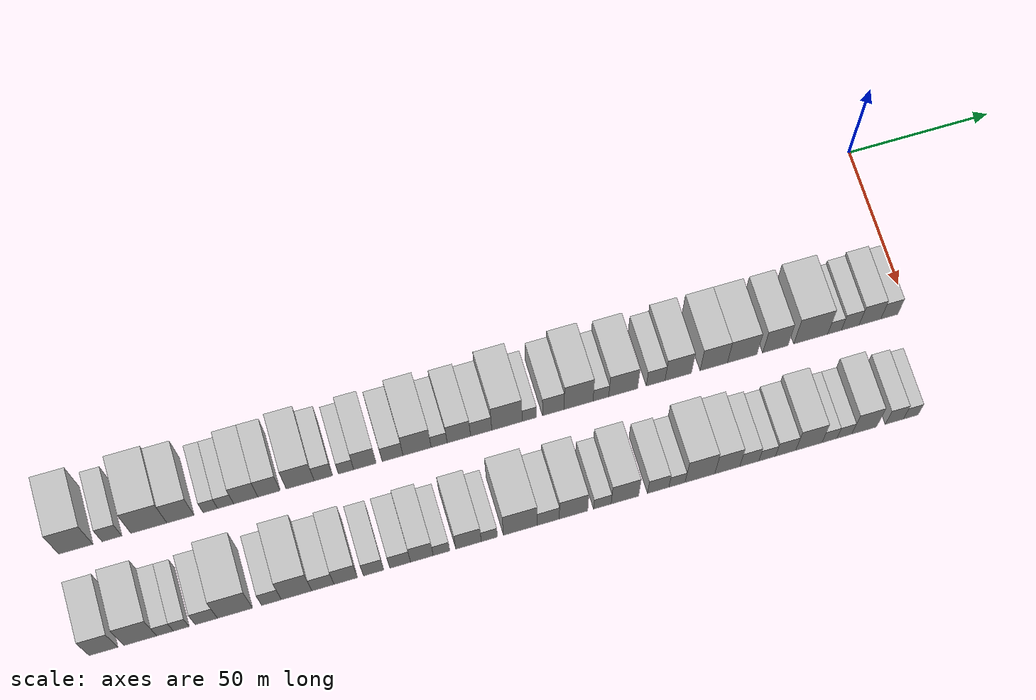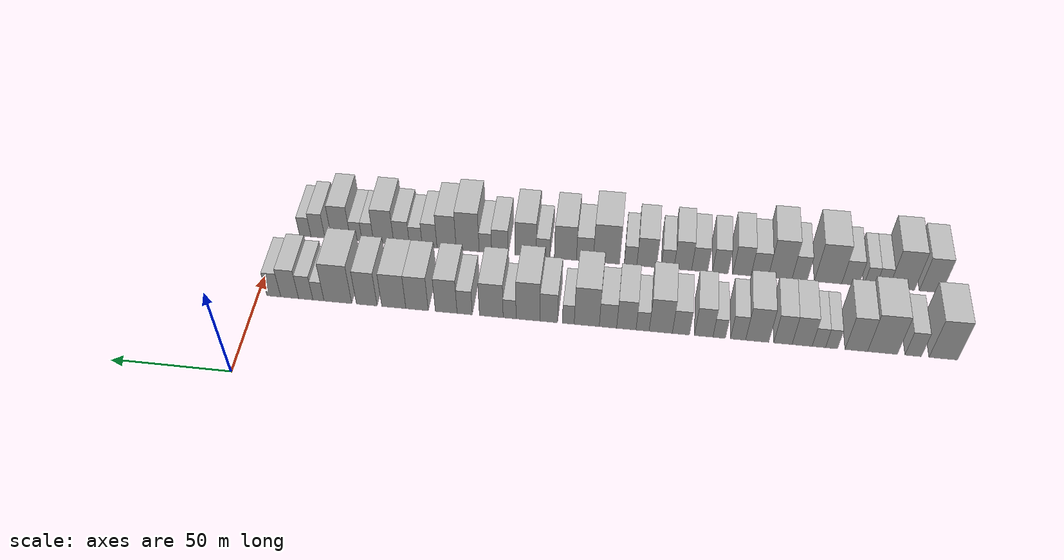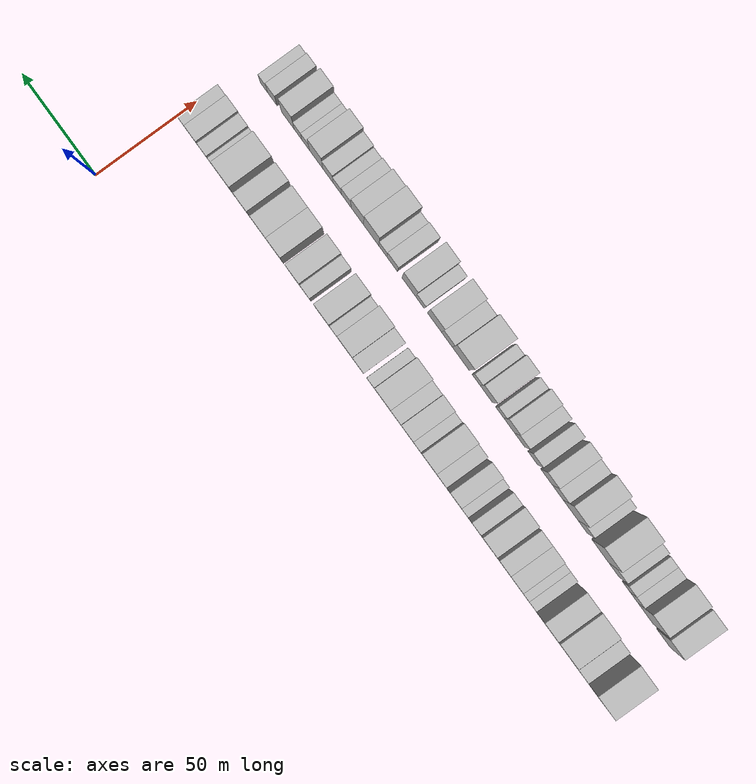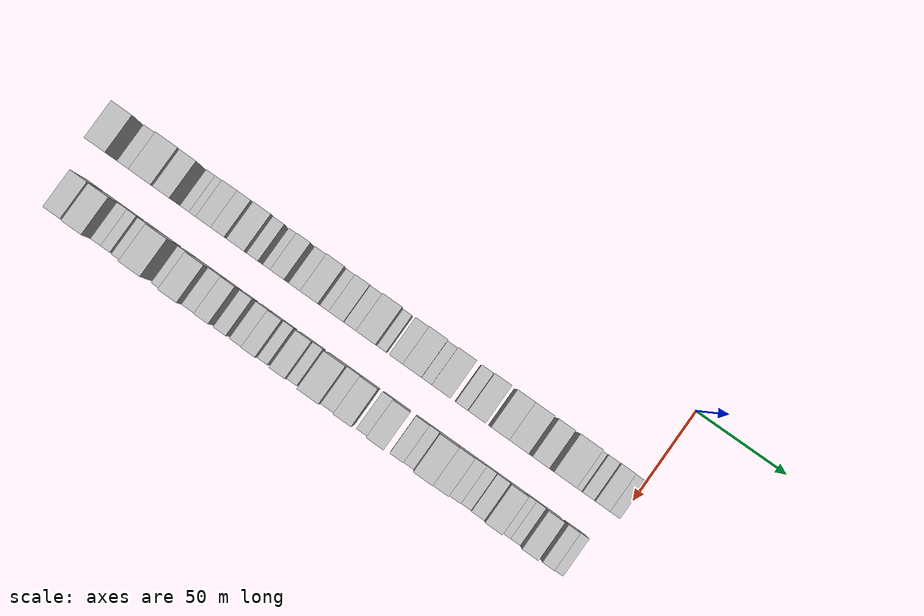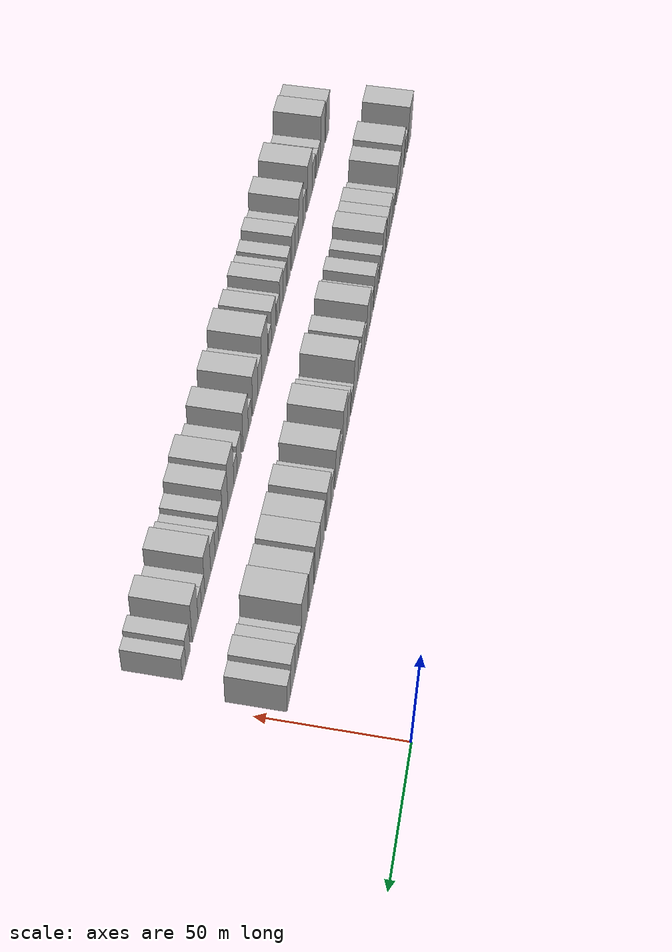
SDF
<sdf version="1.6">
 <world name="default">
  <model name="building_1">
   <static>1</static>
   <pose>50.0000 -284.3592 0 0.000000 0.000000 0.000000</pose>
   <link name="link">
    <pose>0 0 12.00 0 0 0</pose>
    <collision name="collision"><geometry><box><size>20.0000 11.2816 24.0000</size></box></geometry></collision>
    <visual name="visual">
     <cast_shadows>0</cast_shadows>
     <geometry><box><size>20.0000 11.2816 24.0000</size></box></geometry>
     <material>
      <script>
       <uri>model://HANNAS_wall/materials/scripts</uri>
       <uri>model://HANNAS_wall/materials/textures</uri>
       <name>vrc/HANNAS_wall</name>
      </script>
     </material>
    </visual>
   </link>
  </model>
  <model name="building_2">
   <static>1</static>
   <pose>50.0000 -272.4377 0 0.000000 0.000000 0.000000</pose>
   <link name="link">
    <pose>0 0 7.50 0 0 0</pose>
    <collision name="collision"><geometry><box><size>20.0000 6.5613 15.0000</size></box></geometry></collision>
    <visual name="visual">
     <cast_shadows>0</cast_shadows>
     <geometry><box><size>20.0000 6.5613 15.0000</size></box></geometry>
     <material>
      <script>
       <uri>model://HANNAS_wall/materials/scripts</uri>
       <uri>model://HANNAS_wall/materials/textures</uri>
       <name>vrc/HANNAS_wall</name>
      </script>
     </material>
    </visual>
   </link>
  </model>
  <model name="building_3">
   <static>1</static>
   <pose>50.0000 -260.1841 0 0.000000 0.000000 0.000000</pose>
   <link name="link">
    <pose>0 0 12.00 0 0 0</pose>
    <collision name="collision"><geometry><box><size>20.0000 11.9459 24.0000</size></box></geometry></collision>
    <visual name="visual">
     <cast_shadows>0</cast_shadows>
     <geometry><box><size>20.0000 11.9459 24.0000</size></box></geometry>
     <material>
      <script>
       <uri>model://HANNAS_wall/materials/scripts</uri>
       <uri>model://HANNAS_wall/materials/textures</uri>
       <name>vrc/HANNAS_wall</name>
      </script>
     </material>
    </visual>
   </link>
  </model>
  <model name="building_4">
   <static>1</static>
   <pose>50.0000 -249.6946 0 0.000000 0.000000 0.000000</pose>
   <link name="link">
    <pose>0 0 10.50 0 0 0</pose>
    <collision name="collision"><geometry><box><size>20.0000 9.0331 21.0000</size></box></geometry></collision>
    <visual name="visual">
     <cast_shadows>0</cast_shadows>
     <geometry><box><size>20.0000 9.0331 21.0000</size></box></geometry>
     <material>
      <script>
       <uri>model://HANNAS_wall/materials/scripts</uri>
       <uri>model://HANNAS_wall/materials/textures</uri>
       <name>vrc/HANNAS_wall</name>
      </script>
     </material>
    </visual>
   </link>
  </model>
  <model name="building_5">
   <static>1</static>
   <pose>50.0000 -239.7531 0 0.000000 0.000000 0.000000</pose>
   <link name="link">
    <pose>0 0 6.00 0 0 0</pose>
    <collision name="collision"><geometry><box><size>20.0000 4.8501 12.0000</size></box></geometry></collision>
    <visual name="visual">
     <cast_shadows>0</cast_shadows>
     <geometry><box><size>20.0000 4.8501 12.0000</size></box></geometry>
     <material>
      <script>
       <uri>model://HANNAS_wall/materials/scripts</uri>
       <uri>model://HANNAS_wall/materials/textures</uri>
       <name>vrc/HANNAS_wall</name>
      </script>
     </material>
    </visual>
   </link>
  </model>
  <model name="building_6">
   <static>1</static>
   <pose>50.0000 -234.6435 0 0.000000 0.000000 0.000000</pose>
   <link name="link">
    <pose>0 0 6.00 0 0 0</pose>
    <collision name="collision"><geometry><box><size>20.0000 5.3691 12.0000</size></box></geometry></collision>
    <visual name="visual">
     <cast_shadows>0</cast_shadows>
     <geometry><box><size>20.0000 5.3691 12.0000</size></box></geometry>
     <material>
      <script>
       <uri>model://HANNAS_wall/materials/scripts</uri>
       <uri>model://HANNAS_wall/materials/textures</uri>
       <name>vrc/HANNAS_wall</name>
      </script>
     </material>
    </visual>
   </link>
  </model>
  <model name="building_7">
   <static>1</static>
   <pose>50.0000 -227.8935 0 0.000000 0.000000 0.000000</pose>
   <link name="link">
    <pose>0 0 9.00 0 0 0</pose>
    <collision name="collision"><geometry><box><size>20.0000 8.1309 18.0000</size></box></geometry></collision>
    <visual name="visual">
     <cast_shadows>0</cast_shadows>
     <geometry><box><size>20.0000 8.1309 18.0000</size></box></geometry>
     <material>
      <script>
       <uri>model://HANNAS_wall/materials/scripts</uri>
       <uri>model://HANNAS_wall/materials/textures</uri>
       <name>vrc/HANNAS_wall</name>
      </script>
     </material>
    </visual>
   </link>
  </model>
  <model name="building_8">
   <static>1</static>
   <pose>50.0000 -220.1073 0 0.000000 0.000000 0.000000</pose>
   <link name="link">
    <pose>0 0 9.00 0 0 0</pose>
    <collision name="collision"><geometry><box><size>20.0000 7.4415 18.0000</size></box></geometry></collision>
    <visual name="visual">
     <cast_shadows>0</cast_shadows>
     <geometry><box><size>20.0000 7.4415 18.0000</size></box></geometry>
     <material>
      <script>
       <uri>model://HANNAS_wall/materials/scripts</uri>
       <uri>model://HANNAS_wall/materials/textures</uri>
       <name>vrc/HANNAS_wall</name>
      </script>
     </material>
    </visual>
   </link>
  </model>
  <model name="building_9">
   <static>1</static>
   <pose>50.0000 -209.6560 0 0.000000 0.000000 0.000000</pose>
   <link name="link">
    <pose>0 0 10.50 0 0 0</pose>
    <collision name="collision"><geometry><box><size>20.0000 9.4611 21.0000</size></box></geometry></collision>
    <visual name="visual">
     <cast_shadows>0</cast_shadows>
     <geometry><box><size>20.0000 9.4611 21.0000</size></box></geometry>
     <material>
      <script>
       <uri>model://HANNAS_wall/materials/scripts</uri>
       <uri>model://HANNAS_wall/materials/textures</uri>
       <name>vrc/HANNAS_wall</name>
      </script>
     </material>
    </visual>
   </link>
  </model>
  <model name="building_10">
   <static>1</static>
   <pose>50.0000 -201.8469 0 0.000000 0.000000 0.000000</pose>
   <link name="link">
    <pose>0 0 7.50 0 0 0</pose>
    <collision name="collision"><geometry><box><size>20.0000 6.1570 15.0000</size></box></geometry></collision>
    <visual name="visual">
     <cast_shadows>0</cast_shadows>
     <geometry><box><size>20.0000 6.1570 15.0000</size></box></geometry>
     <material>
      <script>
       <uri>model://HANNAS_wall/materials/scripts</uri>
       <uri>model://HANNAS_wall/materials/textures</uri>
       <name>vrc/HANNAS_wall</name>
      </script>
     </material>
    </visual>
   </link>
  </model>
  <model name="building_11">
   <static>1</static>
   <pose>50.0000 -194.1964 0 0.000000 0.000000 0.000000</pose>
   <link name="link">
    <pose>0 0 6.00 0 0 0</pose>
    <collision name="collision"><geometry><box><size>20.0000 5.1440 12.0000</size></box></geometry></collision>
    <visual name="visual">
     <cast_shadows>0</cast_shadows>
     <geometry><box><size>20.0000 5.1440 12.0000</size></box></geometry>
     <material>
      <script>
       <uri>model://HANNAS_wall/materials/scripts</uri>
       <uri>model://HANNAS_wall/materials/textures</uri>
       <name>vrc/HANNAS_wall</name>
      </script>
     </material>
    </visual>
   </link>
  </model>
  <model name="building_12">
   <static>1</static>
   <pose>50.0000 -187.8328 0 0.000000 0.000000 0.000000</pose>
   <link name="link">
    <pose>0 0 9.00 0 0 0</pose>
    <collision name="collision"><geometry><box><size>20.0000 7.5832 18.0000</size></box></geometry></collision>
    <visual name="visual">
     <cast_shadows>0</cast_shadows>
     <geometry><box><size>20.0000 7.5832 18.0000</size></box></geometry>
     <material>
      <script>
       <uri>model://HANNAS_wall/materials/scripts</uri>
       <uri>model://HANNAS_wall/materials/textures</uri>
       <name>vrc/HANNAS_wall</name>
      </script>
     </material>
    </visual>
   </link>
  </model>
  <model name="building_13">
   <static>1</static>
   <pose>50.0000 -178.5126 0 0.000000 0.000000 0.000000</pose>
   <link name="link">
    <pose>0 0 7.50 0 0 0</pose>
    <collision name="collision"><geometry><box><size>20.0000 7.0572 15.0000</size></box></geometry></collision>
    <visual name="visual">
     <cast_shadows>0</cast_shadows>
     <geometry><box><size>20.0000 7.0572 15.0000</size></box></geometry>
     <material>
      <script>
       <uri>model://HANNAS_wall/materials/scripts</uri>
       <uri>model://HANNAS_wall/materials/textures</uri>
       <name>vrc/HANNAS_wall</name>
      </script>
     </material>
    </visual>
   </link>
  </model>
  <model name="building_14">
   <static>1</static>
   <pose>50.0000 -170.2077 0 0.000000 0.000000 0.000000</pose>
   <link name="link">
    <pose>0 0 10.50 0 0 0</pose>
    <collision name="collision"><geometry><box><size>20.0000 9.5524 21.0000</size></box></geometry></collision>
    <visual name="visual">
     <cast_shadows>0</cast_shadows>
     <geometry><box><size>20.0000 9.5524 21.0000</size></box></geometry>
     <material>
      <script>
       <uri>model://HANNAS_wall/materials/scripts</uri>
       <uri>model://HANNAS_wall/materials/textures</uri>
       <name>vrc/HANNAS_wall</name>
      </script>
     </material>
    </visual>
   </link>
  </model>
  <model name="building_15">
   <static>1</static>
   <pose>50.0000 -162.7156 0 0.000000 0.000000 0.000000</pose>
   <link name="link">
    <pose>0 0 6.00 0 0 0</pose>
    <collision name="collision"><geometry><box><size>20.0000 5.4319 12.0000</size></box></geometry></collision>
    <visual name="visual">
     <cast_shadows>0</cast_shadows>
     <geometry><box><size>20.0000 5.4319 12.0000</size></box></geometry>
     <material>
      <script>
       <uri>model://HANNAS_wall/materials/scripts</uri>
       <uri>model://HANNAS_wall/materials/textures</uri>
       <name>vrc/HANNAS_wall</name>
      </script>
     </material>
    </visual>
   </link>
  </model>
  <model name="building_16">
   <static>1</static>
   <pose>50.0000 -156.0095 0 0.000000 0.000000 0.000000</pose>
   <link name="link">
    <pose>0 0 9.00 0 0 0</pose>
    <collision name="collision"><geometry><box><size>20.0000 7.9802 18.0000</size></box></geometry></collision>
    <visual name="visual">
     <cast_shadows>0</cast_shadows>
     <geometry><box><size>20.0000 7.9802 18.0000</size></box></geometry>
     <material>
      <script>
       <uri>model://HANNAS_wall/materials/scripts</uri>
       <uri>model://HANNAS_wall/materials/textures</uri>
       <name>vrc/HANNAS_wall</name>
      </script>
     </material>
    </visual>
   </link>
  </model>
  <model name="building_17">
   <static>1</static>
   <pose>50.0000 -148.4073 0 0.000000 0.000000 0.000000</pose>
   <link name="link">
    <pose>0 0 7.50 0 0 0</pose>
    <collision name="collision"><geometry><box><size>20.0000 7.2241 15.0000</size></box></geometry></collision>
    <visual name="visual">
     <cast_shadows>0</cast_shadows>
     <geometry><box><size>20.0000 7.2241 15.0000</size></box></geometry>
     <material>
      <script>
       <uri>model://HANNAS_wall/materials/scripts</uri>
       <uri>model://HANNAS_wall/materials/textures</uri>
       <name>vrc/HANNAS_wall</name>
      </script>
     </material>
    </visual>
   </link>
  </model>
  <model name="building_18">
   <static>1</static>
   <pose>50.0000 -139.5887 0 0.000000 0.000000 0.000000</pose>
   <link name="link">
    <pose>0 0 12.00 0 0 0</pose>
    <collision name="collision"><geometry><box><size>20.0000 10.4132 24.0000</size></box></geometry></collision>
    <visual name="visual">
     <cast_shadows>0</cast_shadows>
     <geometry><box><size>20.0000 10.4132 24.0000</size></box></geometry>
     <material>
      <script>
       <uri>model://HANNAS_wall/materials/scripts</uri>
       <uri>model://HANNAS_wall/materials/textures</uri>
       <name>vrc/HANNAS_wall</name>
      </script>
     </material>
    </visual>
   </link>
  </model>
  <model name="building_19">
   <static>1</static>
   <pose>50.0000 -131.9105 0 0.000000 0.000000 0.000000</pose>
   <link name="link">
    <pose>0 0 6.00 0 0 0</pose>
    <collision name="collision"><geometry><box><size>20.0000 4.9431 12.0000</size></box></geometry></collision>
    <visual name="visual">
     <cast_shadows>0</cast_shadows>
     <geometry><box><size>20.0000 4.9431 12.0000</size></box></geometry>
     <material>
      <script>
       <uri>model://HANNAS_wall/materials/scripts</uri>
       <uri>model://HANNAS_wall/materials/textures</uri>
       <name>vrc/HANNAS_wall</name>
      </script>
     </material>
    </visual>
   </link>
  </model>
  <model name="building_20">
   <static>1</static>
   <pose>50.0000 -123.7451 0 0.000000 0.000000 0.000000</pose>
   <link name="link">
    <pose>0 0 9.00 0 0 0</pose>
    <collision name="collision"><geometry><box><size>20.0000 7.3878 18.0000</size></box></geometry></collision>
    <visual name="visual">
     <cast_shadows>0</cast_shadows>
     <geometry><box><size>20.0000 7.3878 18.0000</size></box></geometry>
     <material>
      <script>
       <uri>model://HANNAS_wall/materials/scripts</uri>
       <uri>model://HANNAS_wall/materials/textures</uri>
       <name>vrc/HANNAS_wall</name>
      </script>
     </material>
    </visual>
   </link>
  </model>
  <model name="building_21">
   <static>1</static>
   <pose>50.0000 -115.0648 0 0.000000 0.000000 0.000000</pose>
   <link name="link">
    <pose>0 0 12.00 0 0 0</pose>
    <collision name="collision"><geometry><box><size>20.0000 9.9729 24.0000</size></box></geometry></collision>
    <visual name="visual">
     <cast_shadows>0</cast_shadows>
     <geometry><box><size>20.0000 9.9729 24.0000</size></box></geometry>
     <material>
      <script>
       <uri>model://HANNAS_wall/materials/scripts</uri>
       <uri>model://HANNAS_wall/materials/textures</uri>
       <name>vrc/HANNAS_wall</name>
      </script>
     </material>
    </visual>
   </link>
  </model>
  <model name="building_22">
   <static>1</static>
   <pose>50.0000 -107.3679 0 0.000000 0.000000 0.000000</pose>
   <link name="link">
    <pose>0 0 6.00 0 0 0</pose>
    <collision name="collision"><geometry><box><size>20.0000 5.4209 12.0000</size></box></geometry></collision>
    <visual name="visual">
     <cast_shadows>0</cast_shadows>
     <geometry><box><size>20.0000 5.4209 12.0000</size></box></geometry>
     <material>
      <script>
       <uri>model://HANNAS_wall/materials/scripts</uri>
       <uri>model://HANNAS_wall/materials/textures</uri>
       <name>vrc/HANNAS_wall</name>
      </script>
     </material>
    </visual>
   </link>
  </model>
  <model name="building_23">
   <static>1</static>
   <pose>50.0000 -99.6649 0 0.000000 0.000000 0.000000</pose>
   <link name="link">
    <pose>0 0 10.50 0 0 0</pose>
    <collision name="collision"><geometry><box><size>20.0000 9.9850 21.0000</size></box></geometry></collision>
    <visual name="visual">
     <cast_shadows>0</cast_shadows>
     <geometry><box><size>20.0000 9.9850 21.0000</size></box></geometry>
     <material>
      <script>
       <uri>model://HANNAS_wall/materials/scripts</uri>
       <uri>model://HANNAS_wall/materials/textures</uri>
       <name>vrc/HANNAS_wall</name>
      </script>
     </material>
    </visual>
   </link>
  </model>
  <model name="building_24">
   <static>1</static>
   <pose>50.0000 -88.4463 0 0.000000 0.000000 0.000000</pose>
   <link name="link">
    <pose>0 0 7.50 0 0 0</pose>
    <collision name="collision"><geometry><box><size>20.0000 6.4522 15.0000</size></box></geometry></collision>
    <visual name="visual">
     <cast_shadows>0</cast_shadows>
     <geometry><box><size>20.0000 6.4522 15.0000</size></box></geometry>
     <material>
      <script>
       <uri>model://HANNAS_wall/materials/scripts</uri>
       <uri>model://HANNAS_wall/materials/textures</uri>
       <name>vrc/HANNAS_wall</name>
      </script>
     </material>
    </visual>
   </link>
  </model>
  <model name="building_25">
   <static>1</static>
   <pose>50.0000 -80.6226 0 0.000000 0.000000 0.000000</pose>
   <link name="link">
    <pose>0 0 10.50 0 0 0</pose>
    <collision name="collision"><geometry><box><size>20.0000 9.1952 21.0000</size></box></geometry></collision>
    <visual name="visual">
     <cast_shadows>0</cast_shadows>
     <geometry><box><size>20.0000 9.1952 21.0000</size></box></geometry>
     <material>
      <script>
       <uri>model://HANNAS_wall/materials/scripts</uri>
       <uri>model://HANNAS_wall/materials/textures</uri>
       <name>vrc/HANNAS_wall</name>
      </script>
     </material>
    </visual>
   </link>
  </model>
  <model name="building_26">
   <static>1</static>
   <pose>50.0000 -68.2585 0 0.000000 0.000000 0.000000</pose>
   <link name="link">
    <pose>0 0 10.50 0 0 0</pose>
    <collision name="collision"><geometry><box><size>20.0000 9.5330 21.0000</size></box></geometry></collision>
    <visual name="visual">
     <cast_shadows>0</cast_shadows>
     <geometry><box><size>20.0000 9.5330 21.0000</size></box></geometry>
     <material>
      <script>
       <uri>model://HANNAS_wall/materials/scripts</uri>
       <uri>model://HANNAS_wall/materials/textures</uri>
       <name>vrc/HANNAS_wall</name>
      </script>
     </material>
    </visual>
   </link>
  </model>
  <model name="building_27">
   <static>1</static>
   <pose>50.0000 -58.3447 0 0.000000 0.000000 0.000000</pose>
   <link name="link">
    <pose>0 0 10.50 0 0 0</pose>
    <collision name="collision"><geometry><box><size>20.0000 10.2946 21.0000</size></box></geometry></collision>
    <visual name="visual">
     <cast_shadows>0</cast_shadows>
     <geometry><box><size>20.0000 10.2946 21.0000</size></box></geometry>
     <material>
      <script>
       <uri>model://HANNAS_wall/materials/scripts</uri>
       <uri>model://HANNAS_wall/materials/textures</uri>
       <name>vrc/HANNAS_wall</name>
      </script>
     </material>
    </visual>
   </link>
  </model>
  <model name="building_28">
   <static>1</static>
   <pose>50.0000 -46.7667 0 0.000000 0.000000 0.000000</pose>
   <link name="link">
    <pose>0 0 10.50 0 0 0</pose>
    <collision name="collision"><geometry><box><size>20.0000 8.8614 21.0000</size></box></geometry></collision>
    <visual name="visual">
     <cast_shadows>0</cast_shadows>
     <geometry><box><size>20.0000 8.8614 21.0000</size></box></geometry>
     <material>
      <script>
       <uri>model://HANNAS_wall/materials/scripts</uri>
       <uri>model://HANNAS_wall/materials/textures</uri>
       <name>vrc/HANNAS_wall</name>
      </script>
     </material>
    </visual>
   </link>
  </model>
  <model name="building_29">
   <static>1</static>
   <pose>50.0000 -34.3768 0 0.000000 0.000000 0.000000</pose>
   <link name="link">
    <pose>0 0 12.00 0 0 0</pose>
    <collision name="collision"><geometry><box><size>20.0000 11.9185 24.0000</size></box></geometry></collision>
    <visual name="visual">
     <cast_shadows>0</cast_shadows>
     <geometry><box><size>20.0000 11.9185 24.0000</size></box></geometry>
     <material>
      <script>
       <uri>model://HANNAS_wall/materials/scripts</uri>
       <uri>model://HANNAS_wall/materials/textures</uri>
       <name>vrc/HANNAS_wall</name>
      </script>
     </material>
    </visual>
   </link>
  </model>
  <model name="building_30">
   <static>1</static>
   <pose>50.0000 -26.0128 0 0.000000 0.000000 0.000000</pose>
   <link name="link">
    <pose>0 0 6.00 0 0 0</pose>
    <collision name="collision"><geometry><box><size>20.0000 4.8096 12.0000</size></box></geometry></collision>
    <visual name="visual">
     <cast_shadows>0</cast_shadows>
     <geometry><box><size>20.0000 4.8096 12.0000</size></box></geometry>
     <material>
      <script>
       <uri>model://HANNAS_wall/materials/scripts</uri>
       <uri>model://HANNAS_wall/materials/textures</uri>
       <name>vrc/HANNAS_wall</name>
      </script>
     </material>
    </visual>
   </link>
  </model>
  <model name="building_31">
   <static>1</static>
   <pose>50.0000 -20.5107 0 0.000000 0.000000 0.000000</pose>
   <link name="link">
    <pose>0 0 7.50 0 0 0</pose>
    <collision name="collision"><geometry><box><size>20.0000 6.1945 15.0000</size></box></geometry></collision>
    <visual name="visual">
     <cast_shadows>0</cast_shadows>
     <geometry><box><size>20.0000 6.1945 15.0000</size></box></geometry>
     <material>
      <script>
       <uri>model://HANNAS_wall/materials/scripts</uri>
       <uri>model://HANNAS_wall/materials/textures</uri>
       <name>vrc/HANNAS_wall</name>
      </script>
     </material>
    </visual>
   </link>
  </model>
  <model name="building_32">
   <static>1</static>
   <pose>50.0000 -13.5661 0 0.000000 0.000000 0.000000</pose>
   <link name="link">
    <pose>0 0 9.00 0 0 0</pose>
    <collision name="collision"><geometry><box><size>20.0000 7.6948 18.0000</size></box></geometry></collision>
    <visual name="visual">
     <cast_shadows>0</cast_shadows>
     <geometry><box><size>20.0000 7.6948 18.0000</size></box></geometry>
     <material>
      <script>
       <uri>model://HANNAS_wall/materials/scripts</uri>
       <uri>model://HANNAS_wall/materials/textures</uri>
       <name>vrc/HANNAS_wall</name>
      </script>
     </material>
    </visual>
   </link>
  </model>
  <model name="building_33">
   <static>1</static>
   <pose>50.0000 -6.7014 0 0.000000 0.000000 0.000000</pose>
   <link name="link">
    <pose>0 0 7.50 0 0 0</pose>
    <collision name="collision"><geometry><box><size>20.0000 6.0345 15.0000</size></box></geometry></collision>
    <visual name="visual">
     <cast_shadows>0</cast_shadows>
     <geometry><box><size>20.0000 6.0345 15.0000</size></box></geometry>
     <material>
      <script>
       <uri>model://HANNAS_wall/materials/scripts</uri>
       <uri>model://HANNAS_wall/materials/textures</uri>
       <name>vrc/HANNAS_wall</name>
      </script>
     </material>
    </visual>
   </link>
  </model>
  <model name="building_67">
   <static>1</static>
   <pose>85.0000 -283.3280 0 0.000000 0.000000 0.000000</pose>
   <link name="link">
    <pose>0 0 10.50 0 0 0</pose>
    <collision name="collision"><geometry><box><size>20.0000 9.3441 21.0000</size></box></geometry></collision>
    <visual name="visual">
     <cast_shadows>0</cast_shadows>
     <geometry><box><size>20.0000 9.3441 21.0000</size></box></geometry>
     <material>
      <script>
       <uri>model://HANNAS_wall/materials/scripts</uri>
       <uri>model://HANNAS_wall/materials/textures</uri>
       <name>vrc/HANNAS_wall</name>
      </script>
     </material>
    </visual>
   </link>
  </model>
  <model name="building_68">
   <static>1</static>
   <pose>85.0000 -271.2954 0 0.000000 0.000000 0.000000</pose>
   <link name="link">
    <pose>0 0 12.00 0 0 0</pose>
    <collision name="collision"><geometry><box><size>20.0000 10.7210 24.0000</size></box></geometry></collision>
    <visual name="visual">
     <cast_shadows>0</cast_shadows>
     <geometry><box><size>20.0000 10.7210 24.0000</size></box></geometry>
     <material>
      <script>
       <uri>model://HANNAS_wall/materials/scripts</uri>
       <uri>model://HANNAS_wall/materials/textures</uri>
       <name>vrc/HANNAS_wall</name>
      </script>
     </material>
    </visual>
   </link>
  </model>
  <model name="building_69">
   <static>1</static>
   <pose>85.0000 -263.2185 0 0.000000 0.000000 0.000000</pose>
   <link name="link">
    <pose>0 0 6.00 0 0 0</pose>
    <collision name="collision"><geometry><box><size>20.0000 5.4327 12.0000</size></box></geometry></collision>
    <visual name="visual">
     <cast_shadows>0</cast_shadows>
     <geometry><box><size>20.0000 5.4327 12.0000</size></box></geometry>
     <material>
      <script>
       <uri>model://HANNAS_wall/materials/scripts</uri>
       <uri>model://HANNAS_wall/materials/textures</uri>
       <name>vrc/HANNAS_wall</name>
      </script>
     </material>
    </visual>
   </link>
  </model>
  <model name="building_70">
   <static>1</static>
   <pose>85.0000 -257.9267 0 0.000000 0.000000 0.000000</pose>
   <link name="link">
    <pose>0 0 6.00 0 0 0</pose>
    <collision name="collision"><geometry><box><size>20.0000 5.1511 12.0000</size></box></geometry></collision>
    <visual name="visual">
     <cast_shadows>0</cast_shadows>
     <geometry><box><size>20.0000 5.1511 12.0000</size></box></geometry>
     <material>
      <script>
       <uri>model://HANNAS_wall/materials/scripts</uri>
       <uri>model://HANNAS_wall/materials/textures</uri>
       <name>vrc/HANNAS_wall</name>
      </script>
     </material>
    </visual>
   </link>
  </model>
  <model name="building_71">
   <static>1</static>
   <pose>85.0000 -249.7051 0 0.000000 0.000000 0.000000</pose>
   <link name="link">
    <pose>0 0 7.50 0 0 0</pose>
    <collision name="collision"><geometry><box><size>20.0000 7.2920 15.0000</size></box></geometry></collision>
    <visual name="visual">
     <cast_shadows>0</cast_shadows>
     <geometry><box><size>20.0000 7.2920 15.0000</size></box></geometry>
     <material>
      <script>
       <uri>model://HANNAS_wall/materials/scripts</uri>
       <uri>model://HANNAS_wall/materials/textures</uri>
       <name>vrc/HANNAS_wall</name>
      </script>
     </material>
    </visual>
   </link>
  </model>
  <model name="building_72">
   <static>1</static>
   <pose>85.0000 -240.2894 0 0.000000 0.000000 0.000000</pose>
   <link name="link">
    <pose>0 0 12.00 0 0 0</pose>
    <collision name="collision"><geometry><box><size>20.0000 11.5393 24.0000</size></box></geometry></collision>
    <visual name="visual">
     <cast_shadows>0</cast_shadows>
     <geometry><box><size>20.0000 11.5393 24.0000</size></box></geometry>
     <material>
      <script>
       <uri>model://HANNAS_wall/materials/scripts</uri>
       <uri>model://HANNAS_wall/materials/textures</uri>
       <name>vrc/HANNAS_wall</name>
      </script>
     </material>
    </visual>
   </link>
  </model>
  <model name="building_73">
   <static>1</static>
   <pose>85.0000 -228.2674 0 0.000000 0.000000 0.000000</pose>
   <link name="link">
    <pose>0 0 7.50 0 0 0</pose>
    <collision name="collision"><geometry><box><size>20.0000 6.5048 15.0000</size></box></geometry></collision>
    <visual name="visual">
     <cast_shadows>0</cast_shadows>
     <geometry><box><size>20.0000 6.5048 15.0000</size></box></geometry>
     <material>
      <script>
       <uri>model://HANNAS_wall/materials/scripts</uri>
       <uri>model://HANNAS_wall/materials/textures</uri>
       <name>vrc/HANNAS_wall</name>
      </script>
     </material>
    </visual>
   </link>
  </model>
  <model name="building_74">
   <static>1</static>
   <pose>85.0000 -219.9922 0 0.000000 0.000000 0.000000</pose>
   <link name="link">
    <pose>0 0 12.00 0 0 0</pose>
    <collision name="collision"><geometry><box><size>20.0000 10.0457 24.0000</size></box></geometry></collision>
    <visual name="visual">
     <cast_shadows>0</cast_shadows>
     <geometry><box><size>20.0000 10.0457 24.0000</size></box></geometry>
     <material>
      <script>
       <uri>model://HANNAS_wall/materials/scripts</uri>
       <uri>model://HANNAS_wall/materials/textures</uri>
       <name>vrc/HANNAS_wall</name>
      </script>
     </material>
    </visual>
   </link>
  </model>
  <model name="building_75">
   <static>1</static>
   <pose>85.0000 -211.2774 0 0.000000 0.000000 0.000000</pose>
   <link name="link">
    <pose>0 0 7.50 0 0 0</pose>
    <collision name="collision"><geometry><box><size>20.0000 7.3838 15.0000</size></box></geometry></collision>
    <visual name="visual">
     <cast_shadows>0</cast_shadows>
     <geometry><box><size>20.0000 7.3838 15.0000</size></box></geometry>
     <material>
      <script>
       <uri>model://HANNAS_wall/materials/scripts</uri>
       <uri>model://HANNAS_wall/materials/textures</uri>
       <name>vrc/HANNAS_wall</name>
      </script>
     </material>
    </visual>
   </link>
  </model>
  <model name="building_76">
   <static>1</static>
   <pose>85.0000 -203.6915 0 0.000000 0.000000 0.000000</pose>
   <link name="link">
    <pose>0 0 9.00 0 0 0</pose>
    <collision name="collision"><geometry><box><size>20.0000 7.7880 18.0000</size></box></geometry></collision>
    <visual name="visual">
     <cast_shadows>0</cast_shadows>
     <geometry><box><size>20.0000 7.7880 18.0000</size></box></geometry>
     <material>
      <script>
       <uri>model://HANNAS_wall/materials/scripts</uri>
       <uri>model://HANNAS_wall/materials/textures</uri>
       <name>vrc/HANNAS_wall</name>
      </script>
     </material>
    </visual>
   </link>
  </model>
  <model name="building_77">
   <static>1</static>
   <pose>85.0000 -194.4178 0 0.000000 0.000000 0.000000</pose>
   <link name="link">
    <pose>0 0 7.50 0 0 0</pose>
    <collision name="collision"><geometry><box><size>20.0000 6.7595 15.0000</size></box></geometry></collision>
    <visual name="visual">
     <cast_shadows>0</cast_shadows>
     <geometry><box><size>20.0000 6.7595 15.0000</size></box></geometry>
     <material>
      <script>
       <uri>model://HANNAS_wall/materials/scripts</uri>
       <uri>model://HANNAS_wall/materials/textures</uri>
       <name>vrc/HANNAS_wall</name>
      </script>
     </material>
    </visual>
   </link>
  </model>
  <model name="building_78">
   <static>1</static>
   <pose>85.0000 -185.5821 0 0.000000 0.000000 0.000000</pose>
   <link name="link">
    <pose>0 0 7.50 0 0 0</pose>
    <collision name="collision"><geometry><box><size>20.0000 6.9118 15.0000</size></box></geometry></collision>
    <visual name="visual">
     <cast_shadows>0</cast_shadows>
     <geometry><box><size>20.0000 6.9118 15.0000</size></box></geometry>
     <material>
      <script>
       <uri>model://HANNAS_wall/materials/scripts</uri>
       <uri>model://HANNAS_wall/materials/textures</uri>
       <name>vrc/HANNAS_wall</name>
      </script>
     </material>
    </visual>
   </link>
  </model>
  <model name="building_79">
   <static>1</static>
   <pose>85.0000 -178.3327 0 0.000000 0.000000 0.000000</pose>
   <link name="link">
    <pose>0 0 9.00 0 0 0</pose>
    <collision name="collision"><geometry><box><size>20.0000 7.5872 18.0000</size></box></geometry></collision>
    <visual name="visual">
     <cast_shadows>0</cast_shadows>
     <geometry><box><size>20.0000 7.5872 18.0000</size></box></geometry>
     <material>
      <script>
       <uri>model://HANNAS_wall/materials/scripts</uri>
       <uri>model://HANNAS_wall/materials/textures</uri>
       <name>vrc/HANNAS_wall</name>
      </script>
     </material>
    </visual>
   </link>
  </model>
  <model name="building_80">
   <static>1</static>
   <pose>85.0000 -171.7712 0 0.000000 0.000000 0.000000</pose>
   <link name="link">
    <pose>0 0 6.00 0 0 0</pose>
    <collision name="collision"><geometry><box><size>20.0000 5.5357 12.0000</size></box></geometry></collision>
    <visual name="visual">
     <cast_shadows>0</cast_shadows>
     <geometry><box><size>20.0000 5.5357 12.0000</size></box></geometry>
     <material>
      <script>
       <uri>model://HANNAS_wall/materials/scripts</uri>
       <uri>model://HANNAS_wall/materials/textures</uri>
       <name>vrc/HANNAS_wall</name>
      </script>
     </material>
    </visual>
   </link>
  </model>
  <model name="building_81">
   <static>1</static>
   <pose>85.0000 -162.7266 0 0.000000 0.000000 0.000000</pose>
   <link name="link">
    <pose>0 0 9.00 0 0 0</pose>
    <collision name="collision"><geometry><box><size>20.0000 8.5536 18.0000</size></box></geometry></collision>
    <visual name="visual">
     <cast_shadows>0</cast_shadows>
     <geometry><box><size>20.0000 8.5536 18.0000</size></box></geometry>
     <material>
      <script>
       <uri>model://HANNAS_wall/materials/scripts</uri>
       <uri>model://HANNAS_wall/materials/textures</uri>
       <name>vrc/HANNAS_wall</name>
      </script>
     </material>
    </visual>
   </link>
  </model>
  <model name="building_82">
   <static>1</static>
   <pose>85.0000 -155.7339 0 0.000000 0.000000 0.000000</pose>
   <link name="link">
    <pose>0 0 6.00 0 0 0</pose>
    <collision name="collision"><geometry><box><size>20.0000 5.4317 12.0000</size></box></geometry></collision>
    <visual name="visual">
     <cast_shadows>0</cast_shadows>
     <geometry><box><size>20.0000 5.4317 12.0000</size></box></geometry>
     <material>
      <script>
       <uri>model://HANNAS_wall/materials/scripts</uri>
       <uri>model://HANNAS_wall/materials/textures</uri>
       <name>vrc/HANNAS_wall</name>
      </script>
     </material>
    </visual>
   </link>
  </model>
  <model name="building_83">
   <static>1</static>
   <pose>85.0000 -145.2876 0 0.000000 0.000000 0.000000</pose>
   <link name="link">
    <pose>0 0 12.00 0 0 0</pose>
    <collision name="collision"><geometry><box><size>20.0000 11.4608 24.0000</size></box></geometry></collision>
    <visual name="visual">
     <cast_shadows>0</cast_shadows>
     <geometry><box><size>20.0000 11.4608 24.0000</size></box></geometry>
     <material>
      <script>
       <uri>model://HANNAS_wall/materials/scripts</uri>
       <uri>model://HANNAS_wall/materials/textures</uri>
       <name>vrc/HANNAS_wall</name>
      </script>
     </material>
    </visual>
   </link>
  </model>
  <model name="building_84">
   <static>1</static>
   <pose>85.0000 -135.8786 0 0.000000 0.000000 0.000000</pose>
   <link name="link">
    <pose>0 0 7.50 0 0 0</pose>
    <collision name="collision"><geometry><box><size>20.0000 7.3573 15.0000</size></box></geometry></collision>
    <visual name="visual">
     <cast_shadows>0</cast_shadows>
     <geometry><box><size>20.0000 7.3573 15.0000</size></box></geometry>
     <material>
      <script>
       <uri>model://HANNAS_wall/materials/scripts</uri>
       <uri>model://HANNAS_wall/materials/textures</uri>
       <name>vrc/HANNAS_wall</name>
      </script>
     </material>
    </visual>
   </link>
  </model>
  <model name="building_85">
   <static>1</static>
   <pose>85.0000 -127.3873 0 0.000000 0.000000 0.000000</pose>
   <link name="link">
    <pose>0 0 10.50 0 0 0</pose>
    <collision name="collision"><geometry><box><size>20.0000 9.6253 21.0000</size></box></geometry></collision>
    <visual name="visual">
     <cast_shadows>0</cast_shadows>
     <geometry><box><size>20.0000 9.6253 21.0000</size></box></geometry>
     <material>
      <script>
       <uri>model://HANNAS_wall/materials/scripts</uri>
       <uri>model://HANNAS_wall/materials/textures</uri>
       <name>vrc/HANNAS_wall</name>
      </script>
     </material>
    </visual>
   </link>
  </model>
  <model name="building_86">
   <static>1</static>
   <pose>85.0000 -117.6081 0 0.000000 0.000000 0.000000</pose>
   <link name="link">
    <pose>0 0 6.00 0 0 0</pose>
    <collision name="collision"><geometry><box><size>20.0000 5.9331 12.0000</size></box></geometry></collision>
    <visual name="visual">
     <cast_shadows>0</cast_shadows>
     <geometry><box><size>20.0000 5.9331 12.0000</size></box></geometry>
     <material>
      <script>
       <uri>model://HANNAS_wall/materials/scripts</uri>
       <uri>model://HANNAS_wall/materials/textures</uri>
       <name>vrc/HANNAS_wall</name>
      </script>
     </material>
    </visual>
   </link>
  </model>
  <model name="building_87">
   <static>1</static>
   <pose>85.0000 -109.9606 0 0.000000 0.000000 0.000000</pose>
   <link name="link">
    <pose>0 0 10.50 0 0 0</pose>
    <collision name="collision"><geometry><box><size>20.0000 9.3620 21.0000</size></box></geometry></collision>
    <visual name="visual">
     <cast_shadows>0</cast_shadows>
     <geometry><box><size>20.0000 9.3620 21.0000</size></box></geometry>
     <material>
      <script>
       <uri>model://HANNAS_wall/materials/scripts</uri>
       <uri>model://HANNAS_wall/materials/textures</uri>
       <name>vrc/HANNAS_wall</name>
      </script>
     </material>
    </visual>
   </link>
  </model>
  <model name="building_88">
   <static>1</static>
   <pose>85.0000 -98.6316 0 0.000000 0.000000 0.000000</pose>
   <link name="link">
    <pose>0 0 7.50 0 0 0</pose>
    <collision name="collision"><geometry><box><size>20.0000 7.2961 15.0000</size></box></geometry></collision>
    <visual name="visual">
     <cast_shadows>0</cast_shadows>
     <geometry><box><size>20.0000 7.2961 15.0000</size></box></geometry>
     <material>
      <script>
       <uri>model://HANNAS_wall/materials/scripts</uri>
       <uri>model://HANNAS_wall/materials/textures</uri>
       <name>vrc/HANNAS_wall</name>
      </script>
     </material>
    </visual>
   </link>
  </model>
  <model name="building_89">
   <static>1</static>
   <pose>85.0000 -92.2251 0 0.000000 0.000000 0.000000</pose>
   <link name="link">
    <pose>0 0 6.00 0 0 0</pose>
    <collision name="collision"><geometry><box><size>20.0000 5.5170 12.0000</size></box></geometry></collision>
    <visual name="visual">
     <cast_shadows>0</cast_shadows>
     <geometry><box><size>20.0000 5.5170 12.0000</size></box></geometry>
     <material>
      <script>
       <uri>model://HANNAS_wall/materials/scripts</uri>
       <uri>model://HANNAS_wall/materials/textures</uri>
       <name>vrc/HANNAS_wall</name>
      </script>
     </material>
    </visual>
   </link>
  </model>
  <model name="building_90">
   <static>1</static>
   <pose>85.0000 -84.3750 0 0.000000 0.000000 0.000000</pose>
   <link name="link">
    <pose>0 0 12.00 0 0 0</pose>
    <collision name="collision"><geometry><box><size>20.0000 10.1832 24.0000</size></box></geometry></collision>
    <visual name="visual">
     <cast_shadows>0</cast_shadows>
     <geometry><box><size>20.0000 10.1832 24.0000</size></box></geometry>
     <material>
      <script>
       <uri>model://HANNAS_wall/materials/scripts</uri>
       <uri>model://HANNAS_wall/materials/textures</uri>
       <name>vrc/HANNAS_wall</name>
      </script>
     </material>
    </visual>
   </link>
  </model>
  <model name="building_91">
   <static>1</static>
   <pose>85.0000 -75.0140 0 0.000000 0.000000 0.000000</pose>
   <link name="link">
    <pose>0 0 10.50 0 0 0</pose>
    <collision name="collision"><geometry><box><size>20.0000 8.5388 21.0000</size></box></geometry></collision>
    <visual name="visual">
     <cast_shadows>0</cast_shadows>
     <geometry><box><size>20.0000 8.5388 21.0000</size></box></geometry>
     <material>
      <script>
       <uri>model://HANNAS_wall/materials/scripts</uri>
       <uri>model://HANNAS_wall/materials/textures</uri>
       <name>vrc/HANNAS_wall</name>
      </script>
     </material>
    </visual>
   </link>
  </model>
  <model name="building_92">
   <static>1</static>
   <pose>85.0000 -67.4588 0 0.000000 0.000000 0.000000</pose>
   <link name="link">
    <pose>0 0 7.50 0 0 0</pose>
    <collision name="collision"><geometry><box><size>20.0000 6.5716 15.0000</size></box></geometry></collision>
    <visual name="visual">
     <cast_shadows>0</cast_shadows>
     <geometry><box><size>20.0000 6.5716 15.0000</size></box></geometry>
     <material>
      <script>
       <uri>model://HANNAS_wall/materials/scripts</uri>
       <uri>model://HANNAS_wall/materials/textures</uri>
       <name>vrc/HANNAS_wall</name>
      </script>
     </material>
    </visual>
   </link>
  </model>
  <model name="building_93">
   <static>1</static>
   <pose>85.0000 -61.3156 0 0.000000 0.000000 0.000000</pose>
   <link name="link">
    <pose>0 0 6.00 0 0 0</pose>
    <collision name="collision"><geometry><box><size>20.0000 5.7146 12.0000</size></box></geometry></collision>
    <visual name="visual">
     <cast_shadows>0</cast_shadows>
     <geometry><box><size>20.0000 5.7146 12.0000</size></box></geometry>
     <material>
      <script>
       <uri>model://HANNAS_wall/materials/scripts</uri>
       <uri>model://HANNAS_wall/materials/textures</uri>
       <name>vrc/HANNAS_wall</name>
      </script>
     </material>
    </visual>
   </link>
  </model>
  <model name="building_94">
   <static>1</static>
   <pose>85.0000 -54.9738 0 0.000000 0.000000 0.000000</pose>
   <link name="link">
    <pose>0 0 7.50 0 0 0</pose>
    <collision name="collision"><geometry><box><size>20.0000 6.9690 15.0000</size></box></geometry></collision>
    <visual name="visual">
     <cast_shadows>0</cast_shadows>
     <geometry><box><size>20.0000 6.9690 15.0000</size></box></geometry>
     <material>
      <script>
       <uri>model://HANNAS_wall/materials/scripts</uri>
       <uri>model://HANNAS_wall/materials/textures</uri>
       <name>vrc/HANNAS_wall</name>
      </script>
     </material>
    </visual>
   </link>
  </model>
  <model name="building_95">
   <static>1</static>
   <pose>85.0000 -46.9474 0 0.000000 0.000000 0.000000</pose>
   <link name="link">
    <pose>0 0 10.50 0 0 0</pose>
    <collision name="collision"><geometry><box><size>20.0000 9.0837 21.0000</size></box></geometry></collision>
    <visual name="visual">
     <cast_shadows>0</cast_shadows>
     <geometry><box><size>20.0000 9.0837 21.0000</size></box></geometry>
     <material>
      <script>
       <uri>model://HANNAS_wall/materials/scripts</uri>
       <uri>model://HANNAS_wall/materials/textures</uri>
       <name>vrc/HANNAS_wall</name>
      </script>
     </material>
    </visual>
   </link>
  </model>
  <model name="building_96">
   <static>1</static>
   <pose>85.0000 -39.8113 0 0.000000 0.000000 0.000000</pose>
   <link name="link">
    <pose>0 0 6.00 0 0 0</pose>
    <collision name="collision"><geometry><box><size>20.0000 5.1885 12.0000</size></box></geometry></collision>
    <visual name="visual">
     <cast_shadows>0</cast_shadows>
     <geometry><box><size>20.0000 5.1885 12.0000</size></box></geometry>
     <material>
      <script>
       <uri>model://HANNAS_wall/materials/scripts</uri>
       <uri>model://HANNAS_wall/materials/textures</uri>
       <name>vrc/HANNAS_wall</name>
      </script>
     </material>
    </visual>
   </link>
  </model>
  <model name="building_97">
   <static>1</static>
   <pose>85.0000 -34.6220 0 0.000000 0.000000 0.000000</pose>
   <link name="link">
    <pose>0 0 6.00 0 0 0</pose>
    <collision name="collision"><geometry><box><size>20.0000 5.1901 12.0000</size></box></geometry></collision>
    <visual name="visual">
     <cast_shadows>0</cast_shadows>
     <geometry><box><size>20.0000 5.1901 12.0000</size></box></geometry>
     <material>
      <script>
       <uri>model://HANNAS_wall/materials/scripts</uri>
       <uri>model://HANNAS_wall/materials/textures</uri>
       <name>vrc/HANNAS_wall</name>
      </script>
     </material>
    </visual>
   </link>
  </model>
  <model name="building_98">
   <static>1</static>
   <pose>85.0000 -27.7247 0 0.000000 0.000000 0.000000</pose>
   <link name="link">
    <pose>0 0 10.50 0 0 0</pose>
    <collision name="collision"><geometry><box><size>20.0000 8.6046 21.0000</size></box></geometry></collision>
    <visual name="visual">
     <cast_shadows>0</cast_shadows>
     <geometry><box><size>20.0000 8.6046 21.0000</size></box></geometry>
     <material>
      <script>
       <uri>model://HANNAS_wall/materials/scripts</uri>
       <uri>model://HANNAS_wall/materials/textures</uri>
       <name>vrc/HANNAS_wall</name>
      </script>
     </material>
    </visual>
   </link>
  </model>
  <model name="building_99">
   <static>1</static>
   <pose>85.0000 -17.2814 0 0.000000 0.000000 0.000000</pose>
   <link name="link">
    <pose>0 0 7.50 0 0 0</pose>
    <collision name="collision"><geometry><box><size>20.0000 6.2820 15.0000</size></box></geometry></collision>
    <visual name="visual">
     <cast_shadows>0</cast_shadows>
     <geometry><box><size>20.0000 6.2820 15.0000</size></box></geometry>
     <material>
      <script>
       <uri>model://HANNAS_wall/materials/scripts</uri>
       <uri>model://HANNAS_wall/materials/textures</uri>
       <name>vrc/HANNAS_wall</name>
      </script>
     </material>
    </visual>
   </link>
  </model>
  <model name="building_100">
   <static>1</static>
   <pose>85.0000 -11.5567 0 0.000000 0.000000 0.000000</pose>
   <link name="link">
    <pose>0 0 6.00 0 0 0</pose>
    <collision name="collision"><geometry><box><size>20.0000 5.1674 12.0000</size></box></geometry></collision>
    <visual name="visual">
     <cast_shadows>0</cast_shadows>
     <geometry><box><size>20.0000 5.1674 12.0000</size></box></geometry>
     <material>
      <script>
       <uri>model://HANNAS_wall/materials/scripts</uri>
       <uri>model://HANNAS_wall/materials/textures</uri>
       <name>vrc/HANNAS_wall</name>
      </script>
     </material>
    </visual>
   </link>
  </model>
 </world>
</sdf>
